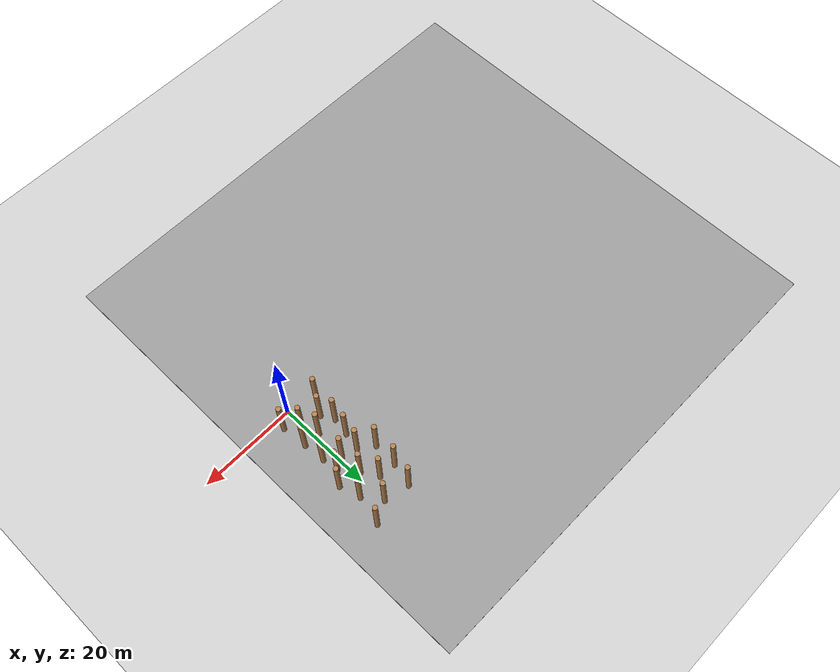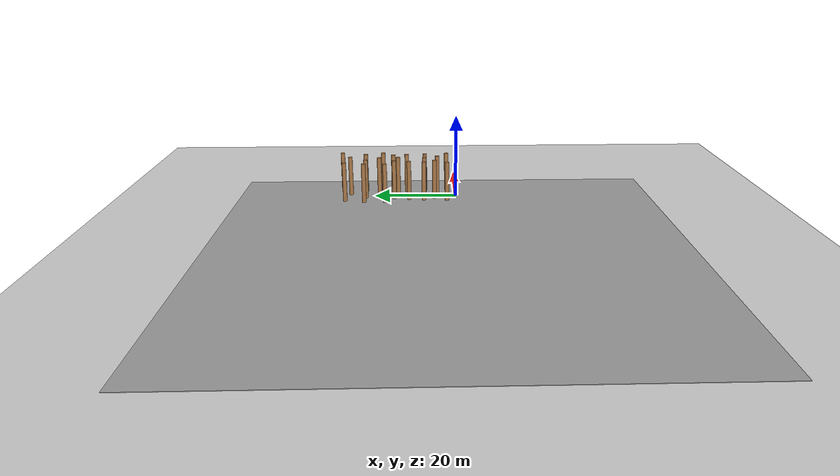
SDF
<sdf version="1.6">
 <world name="default">
  <light name="sun" type="directional">
   <pose>0 0 10 0 -0 0</pose>
   <diffuse>0.8 0.8 0.8 1</diffuse>
   <specular>0.2 0.2 0.2 1</specular>
   <attenuation>
    <range>1000</range>
    <constant>0.9</constant>
    <linear>0.01</linear>
    <quadratic>0.001</quadratic>
   </attenuation>
   <direction>-0.5 0.1 -0.9</direction>
  </light>
  <model name="ground_plane">
   <static>1</static>
   <link name="link">
    <collision name="collision">
     <geometry><plane><normal>0 0 1</normal><size>100 100</size></plane></geometry>
     <surface><friction><ode><mu>100</mu><mu2>50</mu2></ode></friction></surface>
    </collision>
    <visual name="visual">
     <cast_shadows>0</cast_shadows>
     <geometry><plane><normal>0 0 1</normal><size>100 100</size></plane></geometry>
     <material>
      <script><uri>file://media/materials/scripts/gazebo.material</uri><name>Gazebo/Gray</name></script>
     </material>
    </visual>
   </link>
  </model>
  <gravity>0 0 -9.8</gravity>
  <magnetic_field>6e-06 2.3e-05 -4.2e-05</magnetic_field>
  <atmosphere type="adiabatic"/>
  <physics name="default_physics" default="0" type="ode">
   <max_step_size>0.001</max_step_size>
   <real_time_factor>1</real_time_factor>
   <real_time_update_rate>1000</real_time_update_rate>
  </physics>
  <scene><ambient>0.4 0.4 0.4 1</ambient><background>0.7 0.7 0.7 1</background><shadows>1</shadows></scene>
  <spherical_coordinates>
   <surface_model>EARTH_WGS84</surface_model>
   <latitude_deg>0</latitude_deg>
   <longitude_deg>0</longitude_deg>
   <elevation>0</elevation>
   <heading_deg>0</heading_deg>
  </spherical_coordinates>
  <model name="asphalt_plane_1">
   <static>1</static>
   <link name="link">
    <collision name="collision"><geometry><box><size>20 20 0.1</size></box></geometry></collision>
    <visual name="visual">
     <cast_shadows>0</cast_shadows>
     <geometry><box><size>20 20 0.1</size></box></geometry>
     <material>
      <script>
       <uri>model://asphalt_plane/materials/scripts</uri>
       <uri>model://asphalt_plane/materials/textures</uri>
       <name>vrc/asphalt</name>
      </script>
     </material>
    </visual>
   </link>
   <pose>0.098004 9.97829 0 0 -0 0</pose>
  </model>
  <model name="asphalt_plane_2">
   <static>1</static>
   <link name="link">
    <collision name="collision"><geometry><box><size>20 20 0.1</size></box></geometry></collision>
    <visual name="visual">
     <cast_shadows>0</cast_shadows>
     <geometry><box><size>20 20 0.1</size></box></geometry>
     <material>
      <script>
       <uri>model://asphalt_plane/materials/scripts</uri>
       <uri>model://asphalt_plane/materials/textures</uri>
       <name>vrc/asphalt</name>
      </script>
     </material>
    </visual>
   </link>
   <pose>0.117642 29.9977 0 0 -0 0</pose>
  </model>
  <model name="asphalt_plane_3">
   <static>1</static>
   <link name="link">
    <collision name="collision"><geometry><box><size>20 20 0.1</size></box></geometry></collision>
    <visual name="visual">
     <cast_shadows>0</cast_shadows>
     <geometry><box><size>20 20 0.1</size></box></geometry>
     <material>
      <script>
       <uri>model://asphalt_plane/materials/scripts</uri>
       <uri>model://asphalt_plane/materials/textures</uri>
       <name>vrc/asphalt</name>
      </script>
     </material>
    </visual>
   </link>
   <pose>0.085062 -9.98607 0 0 -0 0</pose>
  </model>
  <model name="train">
   <link name="link_0_clone">
    <pose>-2.21669 -8.91111 0.043478 0 -0 0</pose>
    <inertial>
     <mass>1</mass>
     <inertia><ixx>0.145833</ixx><ixy>0</ixy><ixz>0</ixz><iyy>0.145833</iyy><iyz>0</iyz><izz>0.125</izz></inertia>
    </inertial>
    <visual name="visual">
     <pose>0 0 4.5 0 -0 0</pose>
     <geometry><cylinder><radius>0.5</radius><length>10</length></cylinder></geometry>
     <material>
      <lighting>1</lighting>
      <script><uri>file://media/materials/scripts/gazebo.material</uri><name>Gazebo/WoodFloor</name></script>
      <ambient>0.3 0.3 0.3 1</ambient>
      <diffuse>0.7 0.7 0.7 1</diffuse>
      <specular>0.01 0.01 0.01 1</specular>
      <emissive>0 0 0 1</emissive>
      <shader type="vertex"><normal_map>__default__</normal_map></shader>
     </material>
    </visual>
    <collision name="collision">
     <pose>0 0 4.5 0 -0 0</pose>
     <geometry><cylinder><radius>0.5</radius><length>10</length></cylinder></geometry>
     <surface>
      <friction>
       <ode><mu>1</mu><mu2>1</mu2><fdir1>0 0 0</fdir1><slip1>0</slip1><slip2>0</slip2></ode>
       <torsional>
        <coefficient>1</coefficient>
        <patch_radius>0</patch_radius>
        <surface_radius>0</surface_radius>
        <use_patch_radius>1</use_patch_radius>
        <ode><slip>0</slip></ode>
       </torsional>
      </friction>
      <bounce><restitution_coefficient>0</restitution_coefficient><threshold>1e+06</threshold></bounce>
      <contact>
       <collide_without_contact>0</collide_without_contact>
       <collide_without_contact_bitmask>1</collide_without_contact_bitmask>
       <collide_bitmask>1</collide_bitmask>
       <ode>
        <soft_cfm>0</soft_cfm>
        <soft_erp>0.2</soft_erp>
        <kp>1e+13</kp>
        <kd>1</kd>
        <max_vel>0.01</max_vel>
        <min_depth>0</min_depth>
       </ode>
       <bullet>
        <split_impulse>1</split_impulse>
        <split_impulse_penetration_threshold>-0.01</split_impulse_penetration_threshold>
        <soft_cfm>0</soft_cfm>
        <soft_erp>0.2</soft_erp>
        <kp>1e+13</kp>
        <kd>1</kd>
       </bullet>
      </contact>
     </surface>
    </collision>
   </link>
   <link name="link_0_clone_0">
    <pose>1.74011 -9.63468 0.043478 0 -0 0</pose>
    <inertial>
     <mass>1</mass>
     <inertia><ixx>0.145833</ixx><ixy>0</ixy><ixz>0</ixz><iyy>0.145833</iyy><iyz>0</iyz><izz>0.125</izz></inertia>
    </inertial>
    <visual name="visual">
     <pose>0 0 4.5 0 -0 0</pose>
     <geometry><cylinder><radius>0.5</radius><length>10</length></cylinder></geometry>
     <material>
      <lighting>1</lighting>
      <script><uri>file://media/materials/scripts/gazebo.material</uri><name>Gazebo/WoodFloor</name></script>
      <ambient>0.3 0.3 0.3 1</ambient>
      <diffuse>0.7 0.7 0.7 1</diffuse>
      <specular>0.01 0.01 0.01 1</specular>
      <emissive>0 0 0 1</emissive>
      <shader type="vertex"><normal_map>__default__</normal_map></shader>
     </material>
    </visual>
    <collision name="collision">
     <pose>0 0 4.5 0 -0 0</pose>
     <geometry><cylinder><radius>0.5</radius><length>10</length></cylinder></geometry>
     <surface>
      <friction>
       <ode><mu>1</mu><mu2>1</mu2><fdir1>0 0 0</fdir1><slip1>0</slip1><slip2>0</slip2></ode>
       <torsional>
        <coefficient>1</coefficient>
        <patch_radius>0</patch_radius>
        <surface_radius>0</surface_radius>
        <use_patch_radius>1</use_patch_radius>
        <ode><slip>0</slip></ode>
       </torsional>
      </friction>
      <bounce><restitution_coefficient>0</restitution_coefficient><threshold>1e+06</threshold></bounce>
      <contact>
       <collide_without_contact>0</collide_without_contact>
       <collide_without_contact_bitmask>1</collide_without_contact_bitmask>
       <collide_bitmask>1</collide_bitmask>
       <ode>
        <soft_cfm>0</soft_cfm>
        <soft_erp>0.2</soft_erp>
        <kp>1e+13</kp>
        <kd>1</kd>
        <max_vel>0.01</max_vel>
        <min_depth>0</min_depth>
       </ode>
       <bullet>
        <split_impulse>1</split_impulse>
        <split_impulse_penetration_threshold>-0.01</split_impulse_penetration_threshold>
        <soft_cfm>0</soft_cfm>
        <soft_erp>0.2</soft_erp>
        <kp>1e+13</kp>
        <kd>1</kd>
       </bullet>
      </contact>
     </surface>
    </collision>
   </link>
   <link name="link_0_clone_0_clone">
    <pose>0.652107 -0.074082 0.043478 0 -0 0</pose>
    <inertial>
     <mass>1</mass>
     <inertia><ixx>0.145833</ixx><ixy>0</ixy><ixz>0</ixz><iyy>0.145833</iyy><iyz>0</iyz><izz>0.125</izz></inertia>
    </inertial>
    <visual name="visual">
     <pose>0 0 4.5 0 -0 0</pose>
     <geometry><cylinder><radius>0.5</radius><length>10</length></cylinder></geometry>
     <material>
      <lighting>1</lighting>
      <script><uri>file://media/materials/scripts/gazebo.material</uri><name>Gazebo/WoodFloor</name></script>
      <ambient>0.3 0.3 0.3 1</ambient>
      <diffuse>0.7 0.7 0.7 1</diffuse>
      <specular>0.01 0.01 0.01 1</specular>
      <emissive>0 0 0 1</emissive>
      <shader type="vertex"><normal_map>__default__</normal_map></shader>
     </material>
    </visual>
    <collision name="collision">
     <pose>0 0 4.5 0 -0 0</pose>
     <geometry><cylinder><radius>0.5</radius><length>10</length></cylinder></geometry>
     <surface>
      <friction>
       <ode><mu>1</mu><mu2>1</mu2><fdir1>0 0 0</fdir1><slip1>0</slip1><slip2>0</slip2></ode>
       <torsional>
        <coefficient>1</coefficient>
        <patch_radius>0</patch_radius>
        <surface_radius>0</surface_radius>
        <use_patch_radius>1</use_patch_radius>
        <ode><slip>0</slip></ode>
       </torsional>
      </friction>
      <bounce><restitution_coefficient>0</restitution_coefficient><threshold>1e+06</threshold></bounce>
      <contact>
       <collide_without_contact>0</collide_without_contact>
       <collide_without_contact_bitmask>1</collide_without_contact_bitmask>
       <collide_bitmask>1</collide_bitmask>
       <ode>
        <soft_cfm>0</soft_cfm>
        <soft_erp>0.2</soft_erp>
        <kp>1e+13</kp>
        <kd>1</kd>
        <max_vel>0.01</max_vel>
        <min_depth>0</min_depth>
       </ode>
       <bullet>
        <split_impulse>1</split_impulse>
        <split_impulse_penetration_threshold>-0.01</split_impulse_penetration_threshold>
        <soft_cfm>0</soft_cfm>
        <soft_erp>0.2</soft_erp>
        <kp>1e+13</kp>
        <kd>1</kd>
       </bullet>
      </contact>
     </surface>
    </collision>
   </link>
   <link name="link_0_clone_0_clone_0">
    <pose>0.430305 -6.46355 0.043478 0 -0 0</pose>
    <inertial>
     <mass>1</mass>
     <inertia><ixx>0.145833</ixx><ixy>0</ixy><ixz>0</ixz><iyy>0.145833</iyy><iyz>0</iyz><izz>0.125</izz></inertia>
    </inertial>
    <visual name="visual">
     <pose>0 0 4.5 0 -0 0</pose>
     <geometry><cylinder><radius>0.5</radius><length>10</length></cylinder></geometry>
     <material>
      <lighting>1</lighting>
      <script><uri>file://media/materials/scripts/gazebo.material</uri><name>Gazebo/WoodFloor</name></script>
      <ambient>0.3 0.3 0.3 1</ambient>
      <diffuse>0.7 0.7 0.7 1</diffuse>
      <specular>0.01 0.01 0.01 1</specular>
      <emissive>0 0 0 1</emissive>
      <shader type="vertex"><normal_map>__default__</normal_map></shader>
     </material>
    </visual>
    <collision name="collision">
     <pose>0 0 4.5 0 -0 0</pose>
     <geometry><cylinder><radius>0.5</radius><length>10</length></cylinder></geometry>
     <surface>
      <friction>
       <ode><mu>1</mu><mu2>1</mu2><fdir1>0 0 0</fdir1><slip1>0</slip1><slip2>0</slip2></ode>
       <torsional>
        <coefficient>1</coefficient>
        <patch_radius>0</patch_radius>
        <surface_radius>0</surface_radius>
        <use_patch_radius>1</use_patch_radius>
        <ode><slip>0</slip></ode>
       </torsional>
      </friction>
      <bounce><restitution_coefficient>0</restitution_coefficient><threshold>1e+06</threshold></bounce>
      <contact>
       <collide_without_contact>0</collide_without_contact>
       <collide_without_contact_bitmask>1</collide_without_contact_bitmask>
       <collide_bitmask>1</collide_bitmask>
       <ode>
        <soft_cfm>0</soft_cfm>
        <soft_erp>0.2</soft_erp>
        <kp>1e+13</kp>
        <kd>1</kd>
        <max_vel>0.01</max_vel>
        <min_depth>0</min_depth>
       </ode>
       <bullet>
        <split_impulse>1</split_impulse>
        <split_impulse_penetration_threshold>-0.01</split_impulse_penetration_threshold>
        <soft_cfm>0</soft_cfm>
        <soft_erp>0.2</soft_erp>
        <kp>1e+13</kp>
        <kd>1</kd>
       </bullet>
      </contact>
     </surface>
    </collision>
   </link>
   <link name="link_0_clone_0_clone_1">
    <pose>-3.60082 -6.33939 0.043478 0 -0 0</pose>
    <inertial>
     <mass>1</mass>
     <inertia><ixx>0.145833</ixx><ixy>0</ixy><ixz>0</ixz><iyy>0.145833</iyy><iyz>0</iyz><izz>0.125</izz></inertia>
    </inertial>
    <visual name="visual">
     <pose>0 0 4.5 0 -0 0</pose>
     <geometry><cylinder><radius>0.5</radius><length>10</length></cylinder></geometry>
     <material>
      <lighting>1</lighting>
      <script><uri>file://media/materials/scripts/gazebo.material</uri><name>Gazebo/WoodFloor</name></script>
      <ambient>0.3 0.3 0.3 1</ambient>
      <diffuse>0.7 0.7 0.7 1</diffuse>
      <specular>0.01 0.01 0.01 1</specular>
      <emissive>0 0 0 1</emissive>
      <shader type="vertex"><normal_map>__default__</normal_map></shader>
     </material>
    </visual>
    <collision name="collision">
     <pose>0 0 4.5 0 -0 0</pose>
     <geometry><cylinder><radius>0.5</radius><length>10</length></cylinder></geometry>
     <surface>
      <friction>
       <ode><mu>1</mu><mu2>1</mu2><fdir1>0 0 0</fdir1><slip1>0</slip1><slip2>0</slip2></ode>
       <torsional>
        <coefficient>1</coefficient>
        <patch_radius>0</patch_radius>
        <surface_radius>0</surface_radius>
        <use_patch_radius>1</use_patch_radius>
        <ode><slip>0</slip></ode>
       </torsional>
      </friction>
      <bounce><restitution_coefficient>0</restitution_coefficient><threshold>1e+06</threshold></bounce>
      <contact>
       <collide_without_contact>0</collide_without_contact>
       <collide_without_contact_bitmask>1</collide_without_contact_bitmask>
       <collide_bitmask>1</collide_bitmask>
       <ode>
        <soft_cfm>0</soft_cfm>
        <soft_erp>0.2</soft_erp>
        <kp>1e+13</kp>
        <kd>1</kd>
        <max_vel>0.01</max_vel>
        <min_depth>0</min_depth>
       </ode>
       <bullet>
        <split_impulse>1</split_impulse>
        <split_impulse_penetration_threshold>-0.01</split_impulse_penetration_threshold>
        <soft_cfm>0</soft_cfm>
        <soft_erp>0.2</soft_erp>
        <kp>1e+13</kp>
        <kd>1</kd>
       </bullet>
      </contact>
     </surface>
    </collision>
   </link>
   <link name="link_0_clone_0_clone_10">
    <pose>-4.01384 -11.8845 0.043478 0 -0 0</pose>
    <inertial>
     <mass>1</mass>
     <inertia><ixx>0.145833</ixx><ixy>0</ixy><ixz>0</ixz><iyy>0.145833</iyy><iyz>0</iyz><izz>0.125</izz></inertia>
    </inertial>
    <visual name="visual">
     <pose>0 0 4.5 0 -0 0</pose>
     <geometry><cylinder><radius>0.5</radius><length>10</length></cylinder></geometry>
     <material>
      <lighting>1</lighting>
      <script><uri>file://media/materials/scripts/gazebo.material</uri><name>Gazebo/WoodFloor</name></script>
      <ambient>0.3 0.3 0.3 1</ambient>
      <diffuse>0.7 0.7 0.7 1</diffuse>
      <specular>0.01 0.01 0.01 1</specular>
      <emissive>0 0 0 1</emissive>
      <shader type="vertex"><normal_map>__default__</normal_map></shader>
     </material>
    </visual>
    <collision name="collision">
     <pose>0 0 4.5 0 -0 0</pose>
     <geometry><cylinder><radius>0.5</radius><length>10</length></cylinder></geometry>
     <surface>
      <friction>
       <ode><mu>1</mu><mu2>1</mu2><fdir1>0 0 0</fdir1><slip1>0</slip1><slip2>0</slip2></ode>
       <torsional>
        <coefficient>1</coefficient>
        <patch_radius>0</patch_radius>
        <surface_radius>0</surface_radius>
        <use_patch_radius>1</use_patch_radius>
        <ode><slip>0</slip></ode>
       </torsional>
      </friction>
      <bounce><restitution_coefficient>0</restitution_coefficient><threshold>1e+06</threshold></bounce>
      <contact>
       <collide_without_contact>0</collide_without_contact>
       <collide_without_contact_bitmask>1</collide_without_contact_bitmask>
       <collide_bitmask>1</collide_bitmask>
       <ode>
        <soft_cfm>0</soft_cfm>
        <soft_erp>0.2</soft_erp>
        <kp>1e+13</kp>
        <kd>1</kd>
        <max_vel>0.01</max_vel>
        <min_depth>0</min_depth>
       </ode>
       <bullet>
        <split_impulse>1</split_impulse>
        <split_impulse_penetration_threshold>-0.01</split_impulse_penetration_threshold>
        <soft_cfm>0</soft_cfm>
        <soft_erp>0.2</soft_erp>
        <kp>1e+13</kp>
        <kd>1</kd>
       </bullet>
      </contact>
     </surface>
    </collision>
   </link>
   <link name="link_0_clone_0_clone_11">
    <pose>4.2784 -11.9007 0.043478 0 -0 0</pose>
    <inertial>
     <mass>1</mass>
     <inertia><ixx>0.145833</ixx><ixy>0</ixy><ixz>0</ixz><iyy>0.145833</iyy><iyz>0</iyz><izz>0.125</izz></inertia>
    </inertial>
    <visual name="visual">
     <pose>0 0 4.5 0 -0 0</pose>
     <geometry><cylinder><radius>0.5</radius><length>10</length></cylinder></geometry>
     <material>
      <lighting>1</lighting>
      <script><uri>file://media/materials/scripts/gazebo.material</uri><name>Gazebo/WoodFloor</name></script>
      <ambient>0.3 0.3 0.3 1</ambient>
      <diffuse>0.7 0.7 0.7 1</diffuse>
      <specular>0.01 0.01 0.01 1</specular>
      <emissive>0 0 0 1</emissive>
      <shader type="vertex"><normal_map>__default__</normal_map></shader>
     </material>
    </visual>
    <collision name="collision">
     <pose>0 0 4.5 0 -0 0</pose>
     <geometry><cylinder><radius>0.5</radius><length>10</length></cylinder></geometry>
     <surface>
      <friction>
       <ode><mu>1</mu><mu2>1</mu2><fdir1>0 0 0</fdir1><slip1>0</slip1><slip2>0</slip2></ode>
       <torsional>
        <coefficient>1</coefficient>
        <patch_radius>0</patch_radius>
        <surface_radius>0</surface_radius>
        <use_patch_radius>1</use_patch_radius>
        <ode><slip>0</slip></ode>
       </torsional>
      </friction>
      <bounce><restitution_coefficient>0</restitution_coefficient><threshold>1e+06</threshold></bounce>
      <contact>
       <collide_without_contact>0</collide_without_contact>
       <collide_without_contact_bitmask>1</collide_without_contact_bitmask>
       <collide_bitmask>1</collide_bitmask>
       <ode>
        <soft_cfm>0</soft_cfm>
        <soft_erp>0.2</soft_erp>
        <kp>1e+13</kp>
        <kd>1</kd>
        <max_vel>0.01</max_vel>
        <min_depth>0</min_depth>
       </ode>
       <bullet>
        <split_impulse>1</split_impulse>
        <split_impulse_penetration_threshold>-0.01</split_impulse_penetration_threshold>
        <soft_cfm>0</soft_cfm>
        <soft_erp>0.2</soft_erp>
        <kp>1e+13</kp>
        <kd>1</kd>
       </bullet>
      </contact>
     </surface>
    </collision>
   </link>
   <link name="link_0_clone_0_clone_12">
    <pose>-5.23649 2.93294 0.043478 0 -0 0</pose>
    <inertial>
     <mass>1</mass>
     <inertia><ixx>0.145833</ixx><ixy>0</ixy><ixz>0</ixz><iyy>0.145833</iyy><iyz>0</iyz><izz>0.125</izz></inertia>
    </inertial>
    <visual name="visual">
     <pose>0 0 4.5 0 -0 0</pose>
     <geometry><cylinder><radius>0.5</radius><length>10</length></cylinder></geometry>
     <material>
      <lighting>1</lighting>
      <script><uri>file://media/materials/scripts/gazebo.material</uri><name>Gazebo/WoodFloor</name></script>
      <ambient>0.3 0.3 0.3 1</ambient>
      <diffuse>0.7 0.7 0.7 1</diffuse>
      <specular>0.01 0.01 0.01 1</specular>
      <emissive>0 0 0 1</emissive>
      <shader type="vertex"><normal_map>__default__</normal_map></shader>
     </material>
    </visual>
    <collision name="collision">
     <pose>0 0 4.5 0 -0 0</pose>
     <geometry><cylinder><radius>0.5</radius><length>10</length></cylinder></geometry>
     <surface>
      <friction>
       <ode><mu>1</mu><mu2>1</mu2><fdir1>0 0 0</fdir1><slip1>0</slip1><slip2>0</slip2></ode>
       <torsional>
        <coefficient>1</coefficient>
        <patch_radius>0</patch_radius>
        <surface_radius>0</surface_radius>
        <use_patch_radius>1</use_patch_radius>
        <ode><slip>0</slip></ode>
       </torsional>
      </friction>
      <bounce><restitution_coefficient>0</restitution_coefficient><threshold>1e+06</threshold></bounce>
      <contact>
       <collide_without_contact>0</collide_without_contact>
       <collide_without_contact_bitmask>1</collide_without_contact_bitmask>
       <collide_bitmask>1</collide_bitmask>
       <ode>
        <soft_cfm>0</soft_cfm>
        <soft_erp>0.2</soft_erp>
        <kp>1e+13</kp>
        <kd>1</kd>
        <max_vel>0.01</max_vel>
        <min_depth>0</min_depth>
       </ode>
       <bullet>
        <split_impulse>1</split_impulse>
        <split_impulse_penetration_threshold>-0.01</split_impulse_penetration_threshold>
        <soft_cfm>0</soft_cfm>
        <soft_erp>0.2</soft_erp>
        <kp>1e+13</kp>
        <kd>1</kd>
       </bullet>
      </contact>
     </surface>
    </collision>
   </link>
   <link name="link_0_clone_0_clone_13">
    <pose>-4.99838 7.98683 0.043478 0 -0 0</pose>
    <inertial>
     <mass>1</mass>
     <inertia><ixx>0.145833</ixx><ixy>0</ixy><ixz>0</ixz><iyy>0.145833</iyy><iyz>0</iyz><izz>0.125</izz></inertia>
    </inertial>
    <visual name="visual">
     <pose>0 0 4.5 0 -0 0</pose>
     <geometry><cylinder><radius>0.5</radius><length>10</length></cylinder></geometry>
     <material>
      <lighting>1</lighting>
      <script><uri>file://media/materials/scripts/gazebo.material</uri><name>Gazebo/WoodFloor</name></script>
      <ambient>0.3 0.3 0.3 1</ambient>
      <diffuse>0.7 0.7 0.7 1</diffuse>
      <specular>0.01 0.01 0.01 1</specular>
      <emissive>0 0 0 1</emissive>
      <shader type="vertex"><normal_map>__default__</normal_map></shader>
     </material>
    </visual>
    <collision name="collision">
     <pose>0 0 4.5 0 -0 0</pose>
     <geometry><cylinder><radius>0.5</radius><length>10</length></cylinder></geometry>
     <surface>
      <friction>
       <ode><mu>1</mu><mu2>1</mu2><fdir1>0 0 0</fdir1><slip1>0</slip1><slip2>0</slip2></ode>
       <torsional>
        <coefficient>1</coefficient>
        <patch_radius>0</patch_radius>
        <surface_radius>0</surface_radius>
        <use_patch_radius>1</use_patch_radius>
        <ode><slip>0</slip></ode>
       </torsional>
      </friction>
      <bounce><restitution_coefficient>0</restitution_coefficient><threshold>1e+06</threshold></bounce>
      <contact>
       <collide_without_contact>0</collide_without_contact>
       <collide_without_contact_bitmask>1</collide_without_contact_bitmask>
       <collide_bitmask>1</collide_bitmask>
       <ode>
        <soft_cfm>0</soft_cfm>
        <soft_erp>0.2</soft_erp>
        <kp>1e+13</kp>
        <kd>1</kd>
        <max_vel>0.01</max_vel>
        <min_depth>0</min_depth>
       </ode>
       <bullet>
        <split_impulse>1</split_impulse>
        <split_impulse_penetration_threshold>-0.01</split_impulse_penetration_threshold>
        <soft_cfm>0</soft_cfm>
        <soft_erp>0.2</soft_erp>
        <kp>1e+13</kp>
        <kd>1</kd>
       </bullet>
      </contact>
     </surface>
    </collision>
   </link>
   <link name="link_0_clone_0_clone_14">
    <pose>-1.5389 7.6959 0.043478 0 -0 0</pose>
    <inertial>
     <mass>1</mass>
     <inertia><ixx>0.145833</ixx><ixy>0</ixy><ixz>0</ixz><iyy>0.145833</iyy><iyz>0</iyz><izz>0.125</izz></inertia>
    </inertial>
    <visual name="visual">
     <pose>0 0 4.5 0 -0 0</pose>
     <geometry><cylinder><radius>0.5</radius><length>10</length></cylinder></geometry>
     <material>
      <lighting>1</lighting>
      <script><uri>file://media/materials/scripts/gazebo.material</uri><name>Gazebo/WoodFloor</name></script>
      <ambient>0.3 0.3 0.3 1</ambient>
      <diffuse>0.7 0.7 0.7 1</diffuse>
      <specular>0.01 0.01 0.01 1</specular>
      <emissive>0 0 0 1</emissive>
      <shader type="vertex"><normal_map>__default__</normal_map></shader>
     </material>
    </visual>
    <collision name="collision">
     <pose>0 0 4.5 0 -0 0</pose>
     <geometry><cylinder><radius>0.5</radius><length>10</length></cylinder></geometry>
     <surface>
      <friction>
       <ode><mu>1</mu><mu2>1</mu2><fdir1>0 0 0</fdir1><slip1>0</slip1><slip2>0</slip2></ode>
       <torsional>
        <coefficient>1</coefficient>
        <patch_radius>0</patch_radius>
        <surface_radius>0</surface_radius>
        <use_patch_radius>1</use_patch_radius>
        <ode><slip>0</slip></ode>
       </torsional>
      </friction>
      <bounce><restitution_coefficient>0</restitution_coefficient><threshold>1e+06</threshold></bounce>
      <contact>
       <collide_without_contact>0</collide_without_contact>
       <collide_without_contact_bitmask>1</collide_without_contact_bitmask>
       <collide_bitmask>1</collide_bitmask>
       <ode>
        <soft_cfm>0</soft_cfm>
        <soft_erp>0.2</soft_erp>
        <kp>1e+13</kp>
        <kd>1</kd>
        <max_vel>0.01</max_vel>
        <min_depth>0</min_depth>
       </ode>
       <bullet>
        <split_impulse>1</split_impulse>
        <split_impulse_penetration_threshold>-0.01</split_impulse_penetration_threshold>
        <soft_cfm>0</soft_cfm>
        <soft_erp>0.2</soft_erp>
        <kp>1e+13</kp>
        <kd>1</kd>
       </bullet>
      </contact>
     </surface>
    </collision>
   </link>
   <link name="link_0_clone_0_clone_15">
    <pose>3.75773 7.96734 0.043478 0 -0 0</pose>
    <inertial>
     <mass>1</mass>
     <inertia><ixx>0.145833</ixx><ixy>0</ixy><ixz>0</ixz><iyy>0.145833</iyy><iyz>0</iyz><izz>0.125</izz></inertia>
    </inertial>
    <visual name="visual">
     <pose>0 0 4.5 0 -0 0</pose>
     <geometry><cylinder><radius>0.5</radius><length>10</length></cylinder></geometry>
     <material>
      <lighting>1</lighting>
      <script><uri>file://media/materials/scripts/gazebo.material</uri><name>Gazebo/WoodFloor</name></script>
      <ambient>0.3 0.3 0.3 1</ambient>
      <diffuse>0.7 0.7 0.7 1</diffuse>
      <specular>0.01 0.01 0.01 1</specular>
      <emissive>0 0 0 1</emissive>
      <shader type="vertex"><normal_map>__default__</normal_map></shader>
     </material>
    </visual>
    <collision name="collision">
     <pose>0 0 4.5 0 -0 0</pose>
     <geometry><cylinder><radius>0.5</radius><length>10</length></cylinder></geometry>
     <surface>
      <friction>
       <ode><mu>1</mu><mu2>1</mu2><fdir1>0 0 0</fdir1><slip1>0</slip1><slip2>0</slip2></ode>
       <torsional>
        <coefficient>1</coefficient>
        <patch_radius>0</patch_radius>
        <surface_radius>0</surface_radius>
        <use_patch_radius>1</use_patch_radius>
        <ode><slip>0</slip></ode>
       </torsional>
      </friction>
      <bounce><restitution_coefficient>0</restitution_coefficient><threshold>1e+06</threshold></bounce>
      <contact>
       <collide_without_contact>0</collide_without_contact>
       <collide_without_contact_bitmask>1</collide_without_contact_bitmask>
       <collide_bitmask>1</collide_bitmask>
       <ode>
        <soft_cfm>0</soft_cfm>
        <soft_erp>0.2</soft_erp>
        <kp>1e+13</kp>
        <kd>1</kd>
        <max_vel>0.01</max_vel>
        <min_depth>0</min_depth>
       </ode>
       <bullet>
        <split_impulse>1</split_impulse>
        <split_impulse_penetration_threshold>-0.01</split_impulse_penetration_threshold>
        <soft_cfm>0</soft_cfm>
        <soft_erp>0.2</soft_erp>
        <kp>1e+13</kp>
        <kd>1</kd>
       </bullet>
      </contact>
     </surface>
    </collision>
   </link>
   <link name="link_0_clone_0_clone_16">
    <pose>-3.95167 12.6277 0.043478 0 -0 0</pose>
    <inertial>
     <mass>1</mass>
     <inertia><ixx>0.145833</ixx><ixy>0</ixy><ixz>0</ixz><iyy>0.145833</iyy><iyz>0</iyz><izz>0.125</izz></inertia>
    </inertial>
    <visual name="visual">
     <pose>0 0 4.5 0 -0 0</pose>
     <geometry><cylinder><radius>0.5</radius><length>10</length></cylinder></geometry>
     <material>
      <lighting>1</lighting>
      <script><uri>file://media/materials/scripts/gazebo.material</uri><name>Gazebo/WoodFloor</name></script>
      <ambient>0.3 0.3 0.3 1</ambient>
      <diffuse>0.7 0.7 0.7 1</diffuse>
      <specular>0.01 0.01 0.01 1</specular>
      <emissive>0 0 0 1</emissive>
      <shader type="vertex"><normal_map>__default__</normal_map></shader>
     </material>
    </visual>
    <collision name="collision">
     <pose>0 0 4.5 0 -0 0</pose>
     <geometry><cylinder><radius>0.5</radius><length>10</length></cylinder></geometry>
     <surface>
      <friction>
       <ode><mu>1</mu><mu2>1</mu2><fdir1>0 0 0</fdir1><slip1>0</slip1><slip2>0</slip2></ode>
       <torsional>
        <coefficient>1</coefficient>
        <patch_radius>0</patch_radius>
        <surface_radius>0</surface_radius>
        <use_patch_radius>1</use_patch_radius>
        <ode><slip>0</slip></ode>
       </torsional>
      </friction>
      <bounce><restitution_coefficient>0</restitution_coefficient><threshold>1e+06</threshold></bounce>
      <contact>
       <collide_without_contact>0</collide_without_contact>
       <collide_without_contact_bitmask>1</collide_without_contact_bitmask>
       <collide_bitmask>1</collide_bitmask>
       <ode>
        <soft_cfm>0</soft_cfm>
        <soft_erp>0.2</soft_erp>
        <kp>1e+13</kp>
        <kd>1</kd>
        <max_vel>0.01</max_vel>
        <min_depth>0</min_depth>
       </ode>
       <bullet>
        <split_impulse>1</split_impulse>
        <split_impulse_penetration_threshold>-0.01</split_impulse_penetration_threshold>
        <soft_cfm>0</soft_cfm>
        <soft_erp>0.2</soft_erp>
        <kp>1e+13</kp>
        <kd>1</kd>
       </bullet>
      </contact>
     </surface>
    </collision>
   </link>
   <link name="link_0_clone_0_clone_17">
    <pose>5.13836 13.7397 0.043478 0 -0 0</pose>
    <inertial>
     <mass>1</mass>
     <inertia><ixx>0.145833</ixx><ixy>0</ixy><ixz>0</ixz><iyy>0.145833</iyy><iyz>0</iyz><izz>0.125</izz></inertia>
    </inertial>
    <visual name="visual">
     <pose>0 0 4.5 0 -0 0</pose>
     <geometry><cylinder><radius>0.5</radius><length>10</length></cylinder></geometry>
     <material>
      <lighting>1</lighting>
      <script><uri>file://media/materials/scripts/gazebo.material</uri><name>Gazebo/WoodFloor</name></script>
      <ambient>0.3 0.3 0.3 1</ambient>
      <diffuse>0.7 0.7 0.7 1</diffuse>
      <specular>0.01 0.01 0.01 1</specular>
      <emissive>0 0 0 1</emissive>
      <shader type="vertex"><normal_map>__default__</normal_map></shader>
     </material>
    </visual>
    <collision name="collision">
     <pose>0 0 4.5 0 -0 0</pose>
     <geometry><cylinder><radius>0.5</radius><length>10</length></cylinder></geometry>
     <surface>
      <friction>
       <ode><mu>1</mu><mu2>1</mu2><fdir1>0 0 0</fdir1><slip1>0</slip1><slip2>0</slip2></ode>
       <torsional>
        <coefficient>1</coefficient>
        <patch_radius>0</patch_radius>
        <surface_radius>0</surface_radius>
        <use_patch_radius>1</use_patch_radius>
        <ode><slip>0</slip></ode>
       </torsional>
      </friction>
      <bounce><restitution_coefficient>0</restitution_coefficient><threshold>1e+06</threshold></bounce>
      <contact>
       <collide_without_contact>0</collide_without_contact>
       <collide_without_contact_bitmask>1</collide_without_contact_bitmask>
       <collide_bitmask>1</collide_bitmask>
       <ode>
        <soft_cfm>0</soft_cfm>
        <soft_erp>0.2</soft_erp>
        <kp>1e+13</kp>
        <kd>1</kd>
        <max_vel>0.01</max_vel>
        <min_depth>0</min_depth>
       </ode>
       <bullet>
        <split_impulse>1</split_impulse>
        <split_impulse_penetration_threshold>-0.01</split_impulse_penetration_threshold>
        <soft_cfm>0</soft_cfm>
        <soft_erp>0.2</soft_erp>
        <kp>1e+13</kp>
        <kd>1</kd>
       </bullet>
      </contact>
     </surface>
    </collision>
   </link>
   <link name="link_0_clone_0_clone_2">
    <pose>1.09991 11.5381 0.043478 0 -0 0</pose>
    <inertial>
     <mass>1</mass>
     <inertia><ixx>0.145833</ixx><ixy>0</ixy><ixz>0</ixz><iyy>0.145833</iyy><iyz>0</iyz><izz>0.125</izz></inertia>
    </inertial>
    <visual name="visual">
     <pose>0 0 4.5 0 -0 0</pose>
     <geometry><cylinder><radius>0.5</radius><length>10</length></cylinder></geometry>
     <material>
      <lighting>1</lighting>
      <script><uri>file://media/materials/scripts/gazebo.material</uri><name>Gazebo/WoodFloor</name></script>
      <ambient>0.3 0.3 0.3 1</ambient>
      <diffuse>0.7 0.7 0.7 1</diffuse>
      <specular>0.01 0.01 0.01 1</specular>
      <emissive>0 0 0 1</emissive>
      <shader type="vertex"><normal_map>__default__</normal_map></shader>
     </material>
    </visual>
    <collision name="collision">
     <pose>0 0 4.5 0 -0 0</pose>
     <geometry><cylinder><radius>0.5</radius><length>10</length></cylinder></geometry>
     <surface>
      <friction>
       <ode><mu>1</mu><mu2>1</mu2><fdir1>0 0 0</fdir1><slip1>0</slip1><slip2>0</slip2></ode>
       <torsional>
        <coefficient>1</coefficient>
        <patch_radius>0</patch_radius>
        <surface_radius>0</surface_radius>
        <use_patch_radius>1</use_patch_radius>
        <ode><slip>0</slip></ode>
       </torsional>
      </friction>
      <bounce><restitution_coefficient>0</restitution_coefficient><threshold>1e+06</threshold></bounce>
      <contact>
       <collide_without_contact>0</collide_without_contact>
       <collide_without_contact_bitmask>1</collide_without_contact_bitmask>
       <collide_bitmask>1</collide_bitmask>
       <ode>
        <soft_cfm>0</soft_cfm>
        <soft_erp>0.2</soft_erp>
        <kp>1e+13</kp>
        <kd>1</kd>
        <max_vel>0.01</max_vel>
        <min_depth>0</min_depth>
       </ode>
       <bullet>
        <split_impulse>1</split_impulse>
        <split_impulse_penetration_threshold>-0.01</split_impulse_penetration_threshold>
        <soft_cfm>0</soft_cfm>
        <soft_erp>0.2</soft_erp>
        <kp>1e+13</kp>
        <kd>1</kd>
       </bullet>
      </contact>
     </surface>
    </collision>
   </link>
   <link name="link_0_clone_0_clone_3">
    <pose>-3.01675 -2.7591 0.043478 0 -0 0</pose>
    <inertial>
     <mass>1</mass>
     <inertia><ixx>0.145833</ixx><ixy>0</ixy><ixz>0</ixz><iyy>0.145833</iyy><iyz>0</iyz><izz>0.125</izz></inertia>
    </inertial>
    <visual name="visual">
     <pose>0 0 4.5 0 -0 0</pose>
     <geometry><cylinder><radius>0.5</radius><length>10</length></cylinder></geometry>
     <material>
      <lighting>1</lighting>
      <script><uri>file://media/materials/scripts/gazebo.material</uri><name>Gazebo/WoodFloor</name></script>
      <ambient>0.3 0.3 0.3 1</ambient>
      <diffuse>0.7 0.7 0.7 1</diffuse>
      <specular>0.01 0.01 0.01 1</specular>
      <emissive>0 0 0 1</emissive>
      <shader type="vertex"><normal_map>__default__</normal_map></shader>
     </material>
    </visual>
    <collision name="collision">
     <pose>0 0 4.5 0 -0 0</pose>
     <geometry><cylinder><radius>0.5</radius><length>10</length></cylinder></geometry>
     <surface>
      <friction>
       <ode><mu>1</mu><mu2>1</mu2><fdir1>0 0 0</fdir1><slip1>0</slip1><slip2>0</slip2></ode>
       <torsional>
        <coefficient>1</coefficient>
        <patch_radius>0</patch_radius>
        <surface_radius>0</surface_radius>
        <use_patch_radius>1</use_patch_radius>
        <ode><slip>0</slip></ode>
       </torsional>
      </friction>
      <bounce><restitution_coefficient>0</restitution_coefficient><threshold>1e+06</threshold></bounce>
      <contact>
       <collide_without_contact>0</collide_without_contact>
       <collide_without_contact_bitmask>1</collide_without_contact_bitmask>
       <collide_bitmask>1</collide_bitmask>
       <ode>
        <soft_cfm>0</soft_cfm>
        <soft_erp>0.2</soft_erp>
        <kp>1e+13</kp>
        <kd>1</kd>
        <max_vel>0.01</max_vel>
        <min_depth>0</min_depth>
       </ode>
       <bullet>
        <split_impulse>1</split_impulse>
        <split_impulse_penetration_threshold>-0.01</split_impulse_penetration_threshold>
        <soft_cfm>0</soft_cfm>
        <soft_erp>0.2</soft_erp>
        <kp>1e+13</kp>
        <kd>1</kd>
       </bullet>
      </contact>
     </surface>
    </collision>
   </link>
   <link name="link_0_clone_0_clone_4">
    <pose>4.8963 3.74868 0.043478 0 -0 0</pose>
    <inertial>
     <mass>1</mass>
     <inertia><ixx>0.145833</ixx><ixy>0</ixy><ixz>0</ixz><iyy>0.145833</iyy><iyz>0</iyz><izz>0.125</izz></inertia>
    </inertial>
    <visual name="visual">
     <pose>0 0 4.5 0 -0 0</pose>
     <geometry><cylinder><radius>0.5</radius><length>10</length></cylinder></geometry>
     <material>
      <lighting>1</lighting>
      <script><uri>file://media/materials/scripts/gazebo.material</uri><name>Gazebo/WoodFloor</name></script>
      <ambient>0.3 0.3 0.3 1</ambient>
      <diffuse>0.7 0.7 0.7 1</diffuse>
      <specular>0.01 0.01 0.01 1</specular>
      <emissive>0 0 0 1</emissive>
      <shader type="vertex"><normal_map>__default__</normal_map></shader>
     </material>
    </visual>
    <collision name="collision">
     <pose>0 0 4.5 0 -0 0</pose>
     <geometry><cylinder><radius>0.5</radius><length>10</length></cylinder></geometry>
     <surface>
      <friction>
       <ode><mu>1</mu><mu2>1</mu2><fdir1>0 0 0</fdir1><slip1>0</slip1><slip2>0</slip2></ode>
       <torsional>
        <coefficient>1</coefficient>
        <patch_radius>0</patch_radius>
        <surface_radius>0</surface_radius>
        <use_patch_radius>1</use_patch_radius>
        <ode><slip>0</slip></ode>
       </torsional>
      </friction>
      <bounce><restitution_coefficient>0</restitution_coefficient><threshold>1e+06</threshold></bounce>
      <contact>
       <collide_without_contact>0</collide_without_contact>
       <collide_without_contact_bitmask>1</collide_without_contact_bitmask>
       <collide_bitmask>1</collide_bitmask>
       <ode>
        <soft_cfm>0</soft_cfm>
        <soft_erp>0.2</soft_erp>
        <kp>1e+13</kp>
        <kd>1</kd>
        <max_vel>0.01</max_vel>
        <min_depth>0</min_depth>
       </ode>
       <bullet>
        <split_impulse>1</split_impulse>
        <split_impulse_penetration_threshold>-0.01</split_impulse_penetration_threshold>
        <soft_cfm>0</soft_cfm>
        <soft_erp>0.2</soft_erp>
        <kp>1e+13</kp>
        <kd>1</kd>
       </bullet>
      </contact>
     </surface>
    </collision>
   </link>
   <link name="link_0_clone_0_clone_5">
    <pose>0.389912 4.52116 0.043478 0 -0 0</pose>
    <inertial>
     <mass>1</mass>
     <inertia><ixx>0.145833</ixx><ixy>0</ixy><ixz>0</ixz><iyy>0.145833</iyy><iyz>0</iyz><izz>0.125</izz></inertia>
    </inertial>
    <visual name="visual">
     <pose>0 0 4.5 0 -0 0</pose>
     <geometry><cylinder><radius>0.5</radius><length>10</length></cylinder></geometry>
     <material>
      <lighting>1</lighting>
      <script><uri>file://media/materials/scripts/gazebo.material</uri><name>Gazebo/WoodFloor</name></script>
      <ambient>0.3 0.3 0.3 1</ambient>
      <diffuse>0.7 0.7 0.7 1</diffuse>
      <specular>0.01 0.01 0.01 1</specular>
      <emissive>0 0 0 1</emissive>
      <shader type="vertex"><normal_map>__default__</normal_map></shader>
     </material>
    </visual>
    <collision name="collision">
     <pose>0 0 4.5 0 -0 0</pose>
     <geometry><cylinder><radius>0.5</radius><length>10</length></cylinder></geometry>
     <surface>
      <friction>
       <ode><mu>1</mu><mu2>1</mu2><fdir1>0 0 0</fdir1><slip1>0</slip1><slip2>0</slip2></ode>
       <torsional>
        <coefficient>1</coefficient>
        <patch_radius>0</patch_radius>
        <surface_radius>0</surface_radius>
        <use_patch_radius>1</use_patch_radius>
        <ode><slip>0</slip></ode>
       </torsional>
      </friction>
      <bounce><restitution_coefficient>0</restitution_coefficient><threshold>1e+06</threshold></bounce>
      <contact>
       <collide_without_contact>0</collide_without_contact>
       <collide_without_contact_bitmask>1</collide_without_contact_bitmask>
       <collide_bitmask>1</collide_bitmask>
       <ode>
        <soft_cfm>0</soft_cfm>
        <soft_erp>0.2</soft_erp>
        <kp>1e+13</kp>
        <kd>1</kd>
        <max_vel>0.01</max_vel>
        <min_depth>0</min_depth>
       </ode>
       <bullet>
        <split_impulse>1</split_impulse>
        <split_impulse_penetration_threshold>-0.01</split_impulse_penetration_threshold>
        <soft_cfm>0</soft_cfm>
        <soft_erp>0.2</soft_erp>
        <kp>1e+13</kp>
        <kd>1</kd>
       </bullet>
      </contact>
     </surface>
    </collision>
   </link>
   <link name="link_0_clone_0_clone_6">
    <pose>-2.32714 0.83153 0.043478 0 -0 0</pose>
    <inertial>
     <mass>1</mass>
     <inertia><ixx>0.145833</ixx><ixy>0</ixy><ixz>0</ixz><iyy>0.145833</iyy><iyz>0</iyz><izz>0.125</izz></inertia>
    </inertial>
    <visual name="visual">
     <pose>0 0 4.5 0 -0 0</pose>
     <geometry><cylinder><radius>0.5</radius><length>10</length></cylinder></geometry>
     <material>
      <lighting>1</lighting>
      <script><uri>file://media/materials/scripts/gazebo.material</uri><name>Gazebo/WoodFloor</name></script>
      <ambient>0.3 0.3 0.3 1</ambient>
      <diffuse>0.7 0.7 0.7 1</diffuse>
      <specular>0.01 0.01 0.01 1</specular>
      <emissive>0 0 0 1</emissive>
      <shader type="vertex"><normal_map>__default__</normal_map></shader>
     </material>
    </visual>
    <collision name="collision">
     <pose>0 0 4.5 0 -0 0</pose>
     <geometry><cylinder><radius>0.5</radius><length>10</length></cylinder></geometry>
     <surface>
      <friction>
       <ode><mu>1</mu><mu2>1</mu2><fdir1>0 0 0</fdir1><slip1>0</slip1><slip2>0</slip2></ode>
       <torsional>
        <coefficient>1</coefficient>
        <patch_radius>0</patch_radius>
        <surface_radius>0</surface_radius>
        <use_patch_radius>1</use_patch_radius>
        <ode><slip>0</slip></ode>
       </torsional>
      </friction>
      <bounce><restitution_coefficient>0</restitution_coefficient><threshold>1e+06</threshold></bounce>
      <contact>
       <collide_without_contact>0</collide_without_contact>
       <collide_without_contact_bitmask>1</collide_without_contact_bitmask>
       <collide_bitmask>1</collide_bitmask>
       <ode>
        <soft_cfm>0</soft_cfm>
        <soft_erp>0.2</soft_erp>
        <kp>1e+13</kp>
        <kd>1</kd>
        <max_vel>0.01</max_vel>
        <min_depth>0</min_depth>
       </ode>
       <bullet>
        <split_impulse>1</split_impulse>
        <split_impulse_penetration_threshold>-0.01</split_impulse_penetration_threshold>
        <soft_cfm>0</soft_cfm>
        <soft_erp>0.2</soft_erp>
        <kp>1e+13</kp>
        <kd>1</kd>
       </bullet>
      </contact>
     </surface>
    </collision>
   </link>
   <link name="link_0_clone_0_clone_7">
    <pose>2.96146 1.16575 0.043478 0 -0 0</pose>
    <inertial>
     <mass>1</mass>
     <inertia><ixx>0.145833</ixx><ixy>0</ixy><ixz>0</ixz><iyy>0.145833</iyy><iyz>0</iyz><izz>0.125</izz></inertia>
    </inertial>
    <visual name="visual">
     <pose>0 0 4.5 0 -0 0</pose>
     <geometry><cylinder><radius>0.5</radius><length>10</length></cylinder></geometry>
     <material>
      <lighting>1</lighting>
      <script><uri>file://media/materials/scripts/gazebo.material</uri><name>Gazebo/WoodFloor</name></script>
      <ambient>0.3 0.3 0.3 1</ambient>
      <diffuse>0.7 0.7 0.7 1</diffuse>
      <specular>0.01 0.01 0.01 1</specular>
      <emissive>0 0 0 1</emissive>
      <shader type="vertex"><normal_map>__default__</normal_map></shader>
     </material>
    </visual>
    <collision name="collision">
     <pose>0 0 4.5 0 -0 0</pose>
     <geometry><cylinder><radius>0.5</radius><length>10</length></cylinder></geometry>
     <surface>
      <friction>
       <ode><mu>1</mu><mu2>1</mu2><fdir1>0 0 0</fdir1><slip1>0</slip1><slip2>0</slip2></ode>
       <torsional>
        <coefficient>1</coefficient>
        <patch_radius>0</patch_radius>
        <surface_radius>0</surface_radius>
        <use_patch_radius>1</use_patch_radius>
        <ode><slip>0</slip></ode>
       </torsional>
      </friction>
      <bounce><restitution_coefficient>0</restitution_coefficient><threshold>1e+06</threshold></bounce>
      <contact>
       <collide_without_contact>0</collide_without_contact>
       <collide_without_contact_bitmask>1</collide_without_contact_bitmask>
       <collide_bitmask>1</collide_bitmask>
       <ode>
        <soft_cfm>0</soft_cfm>
        <soft_erp>0.2</soft_erp>
        <kp>1e+13</kp>
        <kd>1</kd>
        <max_vel>0.01</max_vel>
        <min_depth>0</min_depth>
       </ode>
       <bullet>
        <split_impulse>1</split_impulse>
        <split_impulse_penetration_threshold>-0.01</split_impulse_penetration_threshold>
        <soft_cfm>0</soft_cfm>
        <soft_erp>0.2</soft_erp>
        <kp>1e+13</kp>
        <kd>1</kd>
       </bullet>
      </contact>
     </surface>
    </collision>
   </link>
   <link name="link_0_clone_0_clone_8">
    <pose>3.44726 -2.11442 0.043478 0 -0 0</pose>
    <inertial>
     <mass>1</mass>
     <inertia><ixx>0.145833</ixx><ixy>0</ixy><ixz>0</ixz><iyy>0.145833</iyy><iyz>0</iyz><izz>0.125</izz></inertia>
    </inertial>
    <visual name="visual">
     <pose>0 0 4.5 0 -0 0</pose>
     <geometry><cylinder><radius>0.5</radius><length>10</length></cylinder></geometry>
     <material>
      <lighting>1</lighting>
      <script><uri>file://media/materials/scripts/gazebo.material</uri><name>Gazebo/WoodFloor</name></script>
      <ambient>0.3 0.3 0.3 1</ambient>
      <diffuse>0.7 0.7 0.7 1</diffuse>
      <specular>0.01 0.01 0.01 1</specular>
      <emissive>0 0 0 1</emissive>
      <shader type="vertex"><normal_map>__default__</normal_map></shader>
     </material>
    </visual>
    <collision name="collision">
     <pose>0 0 4.5 0 -0 0</pose>
     <geometry><cylinder><radius>0.5</radius><length>10</length></cylinder></geometry>
     <surface>
      <friction>
       <ode><mu>1</mu><mu2>1</mu2><fdir1>0 0 0</fdir1><slip1>0</slip1><slip2>0</slip2></ode>
       <torsional>
        <coefficient>1</coefficient>
        <patch_radius>0</patch_radius>
        <surface_radius>0</surface_radius>
        <use_patch_radius>1</use_patch_radius>
        <ode><slip>0</slip></ode>
       </torsional>
      </friction>
      <bounce><restitution_coefficient>0</restitution_coefficient><threshold>1e+06</threshold></bounce>
      <contact>
       <collide_without_contact>0</collide_without_contact>
       <collide_without_contact_bitmask>1</collide_without_contact_bitmask>
       <collide_bitmask>1</collide_bitmask>
       <ode>
        <soft_cfm>0</soft_cfm>
        <soft_erp>0.2</soft_erp>
        <kp>1e+13</kp>
        <kd>1</kd>
        <max_vel>0.01</max_vel>
        <min_depth>0</min_depth>
       </ode>
       <bullet>
        <split_impulse>1</split_impulse>
        <split_impulse_penetration_threshold>-0.01</split_impulse_penetration_threshold>
        <soft_cfm>0</soft_cfm>
        <soft_erp>0.2</soft_erp>
        <kp>1e+13</kp>
        <kd>1</kd>
       </bullet>
      </contact>
     </surface>
    </collision>
   </link>
   <link name="link_0_clone_0_clone_9">
    <pose>3.84582 -6.55996 0.043478 0 -0 0</pose>
    <inertial>
     <mass>1</mass>
     <inertia><ixx>0.145833</ixx><ixy>0</ixy><ixz>0</ixz><iyy>0.145833</iyy><iyz>0</iyz><izz>0.125</izz></inertia>
    </inertial>
    <visual name="visual">
     <pose>0 0 4.5 0 -0 0</pose>
     <geometry><cylinder><radius>0.5</radius><length>10</length></cylinder></geometry>
     <material>
      <lighting>1</lighting>
      <script><uri>file://media/materials/scripts/gazebo.material</uri><name>Gazebo/WoodFloor</name></script>
      <ambient>0.3 0.3 0.3 1</ambient>
      <diffuse>0.7 0.7 0.7 1</diffuse>
      <specular>0.01 0.01 0.01 1</specular>
      <emissive>0 0 0 1</emissive>
      <shader type="vertex"><normal_map>__default__</normal_map></shader>
     </material>
    </visual>
    <collision name="collision">
     <pose>0 0 4.5 0 -0 0</pose>
     <geometry><cylinder><radius>0.5</radius><length>10</length></cylinder></geometry>
     <surface>
      <friction>
       <ode><mu>1</mu><mu2>1</mu2><fdir1>0 0 0</fdir1><slip1>0</slip1><slip2>0</slip2></ode>
       <torsional>
        <coefficient>1</coefficient>
        <patch_radius>0</patch_radius>
        <surface_radius>0</surface_radius>
        <use_patch_radius>1</use_patch_radius>
        <ode><slip>0</slip></ode>
       </torsional>
      </friction>
      <bounce><restitution_coefficient>0</restitution_coefficient><threshold>1e+06</threshold></bounce>
      <contact>
       <collide_without_contact>0</collide_without_contact>
       <collide_without_contact_bitmask>1</collide_without_contact_bitmask>
       <collide_bitmask>1</collide_bitmask>
       <ode>
        <soft_cfm>0</soft_cfm>
        <soft_erp>0.2</soft_erp>
        <kp>1e+13</kp>
        <kd>1</kd>
        <max_vel>0.01</max_vel>
        <min_depth>0</min_depth>
       </ode>
       <bullet>
        <split_impulse>1</split_impulse>
        <split_impulse_penetration_threshold>-0.01</split_impulse_penetration_threshold>
        <soft_cfm>0</soft_cfm>
        <soft_erp>0.2</soft_erp>
        <kp>1e+13</kp>
        <kd>1</kd>
       </bullet>
      </contact>
     </surface>
    </collision>
   </link>
   <model name="asphalt_plane">
    <static>1</static>
    <link name="link">
     <collision name="collision"><geometry><box><size>20 20 0.1</size></box></geometry></collision>
     <visual name="visual">
      <cast_shadows>0</cast_shadows>
      <geometry><box><size>20 20 0.1</size></box></geometry>
      <material>
       <script>
        <uri>model://asphalt_plane/materials/scripts</uri>
        <uri>model://asphalt_plane/materials/textures</uri>
        <name>vrc/asphalt</name>
       </script>
      </material>
     </visual>
    </link>
    <pose>-0.830696 -14.1248 -0.456522 0 -0 0</pose>
   </model>
   <model name="asphalt_plane_0">
    <static>1</static>
    <link name="link">
     <collision name="collision"><geometry><box><size>20 20 0.1</size></box></geometry></collision>
     <visual name="visual">
      <cast_shadows>0</cast_shadows>
      <geometry><box><size>20 20 0.1</size></box></geometry>
      <material>
       <script>
        <uri>model://asphalt_plane/materials/scripts</uri>
        <uri>model://asphalt_plane/materials/textures</uri>
        <name>vrc/asphalt</name>
       </script>
      </material>
     </visual>
    </link>
    <pose>-0.906283 6.01083 -0.456522 0 -0 0</pose>
   </model>
   <model name="ground_plane">
    <static>1</static>
    <link name="link">
     <collision name="collision">
      <geometry><plane><normal>0 0 1</normal><size>100 100</size></plane></geometry>
      <surface><friction><ode><mu>100</mu><mu2>50</mu2></ode></friction></surface>
     </collision>
     <visual name="visual">
      <cast_shadows>0</cast_shadows>
      <geometry><plane><normal>0 0 1</normal><size>100 100</size></plane></geometry>
      <material>
       <script><uri>file://media/materials/scripts/gazebo.material</uri><name>Gazebo/Gray</name></script>
      </material>
     </visual>
    </link>
    <pose>-37.5199 -11.4952 1e-05 0 -0 0</pose>
   </model>
   <static>1</static>
   <pose>-1.27401 14.2468 0.506474 -6e-06 -2e-06 5e-06</pose>
  </model>
 </world>
</sdf>
